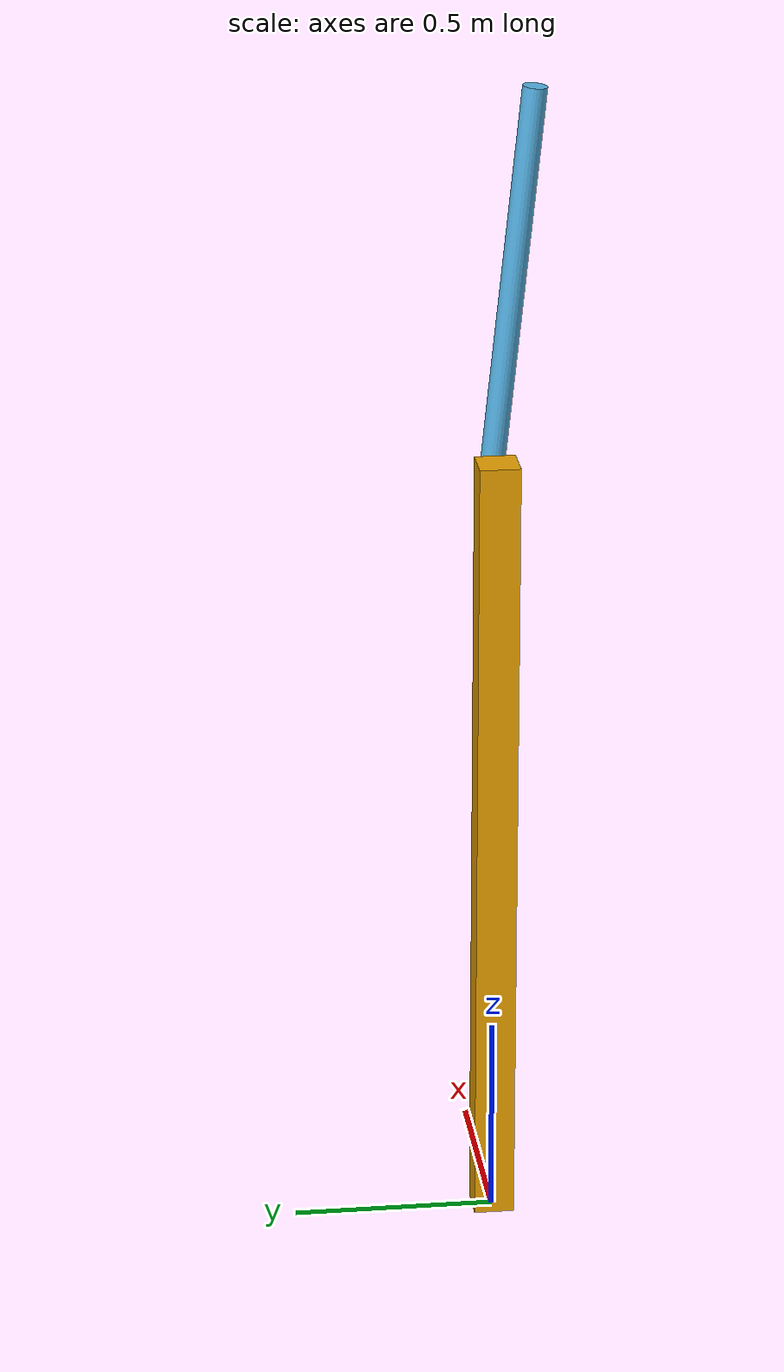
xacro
<?xml version="1.0"?>

<robot name="pendulum_robot" xmlns:xacro="http://www.ros.org/wiki/xacro">

  <xacro:property name="width" value="0.1" />
  <xacro:property name="height_base" value="2" />
  <xacro:property name="height_pole" value="1" />
  <xacro:property name="axle_offset" value="0.05" />
  <xacro:property name="radius" value="0.03" />

  <link name="base_link">
    <visual>
      <origin xyz="0 0 ${height_base/2}" rpy="0 0 0"/>
      <geometry>
        <box size="${width} ${width} ${height_base}"/>
      </geometry>
    </visual>
    <collision>
      <origin xyz="0 0 ${height_base/2}" rpy="0 0 0"/>
      <geometry>
        <box size="${width} ${width} ${height_base}"/>
      </geometry>
    </collision>
    <inertial>
      <origin xyz="0 0 ${height_base/2}" rpy="0 0 0"/>
      <mass value="1"/>
      <inertia ixx="1.0" ixy="0.0" ixz="0.0"
               iyy="1.0" iyz="0.0" izz="1.0"/>
    </inertial>
  </link>

  <link name="pole_link">
    <visual>
      <origin xyz="0 0 ${height_pole/2 - axle_offset}" rpy="0 0 0"/>
      <geometry>
        <cylinder length="${height_pole}" radius="${radius}"/>
      </geometry>
    </visual>
    <collision>
      <origin xyz="0 0 ${height_pole/2 - axle_offset}" rpy="0 0 0"/>
      <geometry>
        <cylinder length="${height_pole}" radius="${radius}"/>
      </geometry>
    </collision>
    <inertial>
      <origin xyz="0 0 ${height_pole/2 - axle_offset}" rpy="0 0 0"/>
      <mass value="1"/>
      <inertia ixx="1.0" ixy="0.0" ixz="0.0"
               iyy="1.0" iyz="0.0" izz="1.0"/>
    </inertial>
  </link>

  <joint name="joint_base_pole" type="continuous">
    <parent link="base_link"/>
    <child link="pole_link"/>
    <origin xyz="0.1 0.0 ${height_base - axle_offset}" rpy="0.1 0 0"/>
    <axis xyz="1 0 0"/>
  </joint>

</robot>
